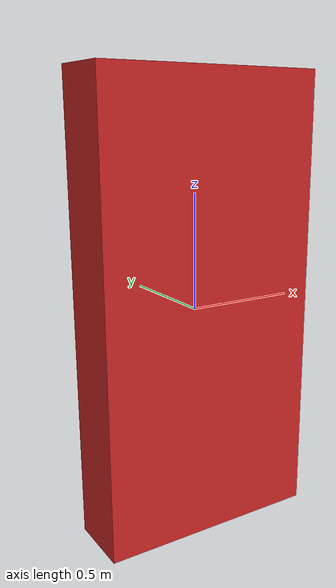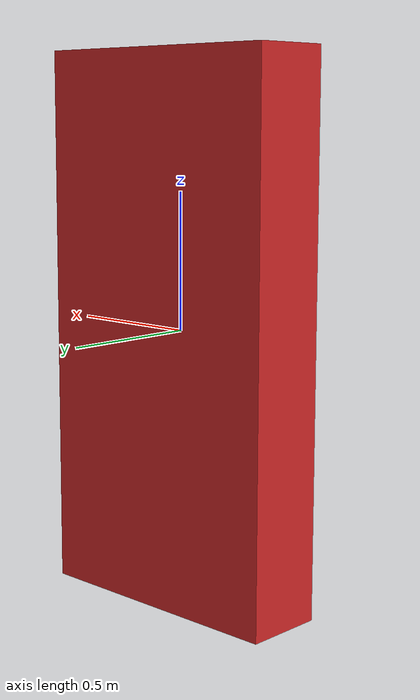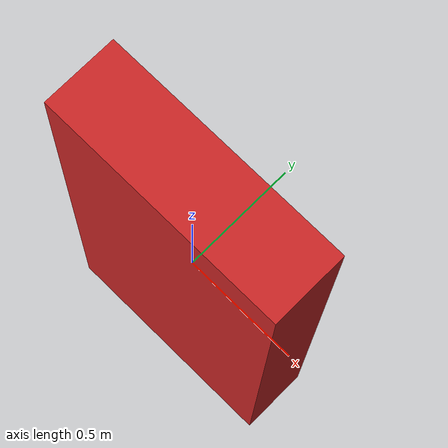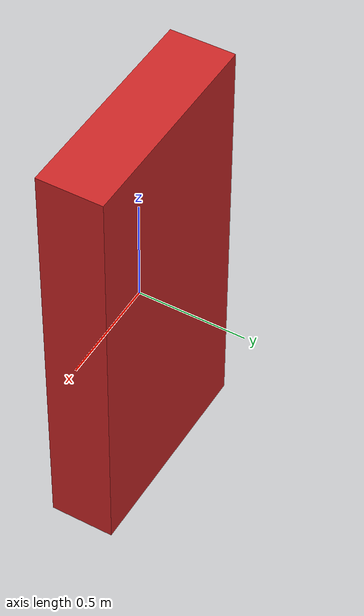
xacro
<?xml version="1.0"?>
<robot
    xmlns:xacro="http://www.ros.org/wiki/xacro" name="block" >

  <xacro:property name="block_x" value="1.0"/>
  <xacro:property name="block_y" value="0.3"/>
  <xacro:property name="block_z" value="2.0"/>
  <xacro:property name="mass" value="0.4"/>

  <link name="block">
    <inertial>
      <origin xyz="0 0 0"/>
      <mass value="${mass}"/>
      <inertia
          ixx="${1 / 3 * (block_y * block_y + block_z * block_z) * mass}" ixy="0.0" ixz="0.0"
          iyy="${1 / 3 * (block_z * block_z + block_x * block_x) * mass}" iyz="0.0"
          izz="${1 / 3 * (block_x * block_x + block_y * block_y) * mass}"/>
    </inertial>
    <collision>
      <origin xyz="0 0 0"/>
      <geometry>
        <box size="${block_x} ${block_y} ${block_z}"/>
      </geometry>
    </collision>
    <visual>
      <origin xyz="0 0 0"/>
      <geometry>
        <box size="${block_x} ${block_y} ${block_z}"/>
      </geometry>
    </visual>
  </link>

  <gazebo reference="block">
    <mu1 value="0.8"/>
    <mu2 value="0.8"/>
  </gazebo>

 <gazebo reference="block">
      <material>Gazebo/Red</material>
 </gazebo>

</robot>
